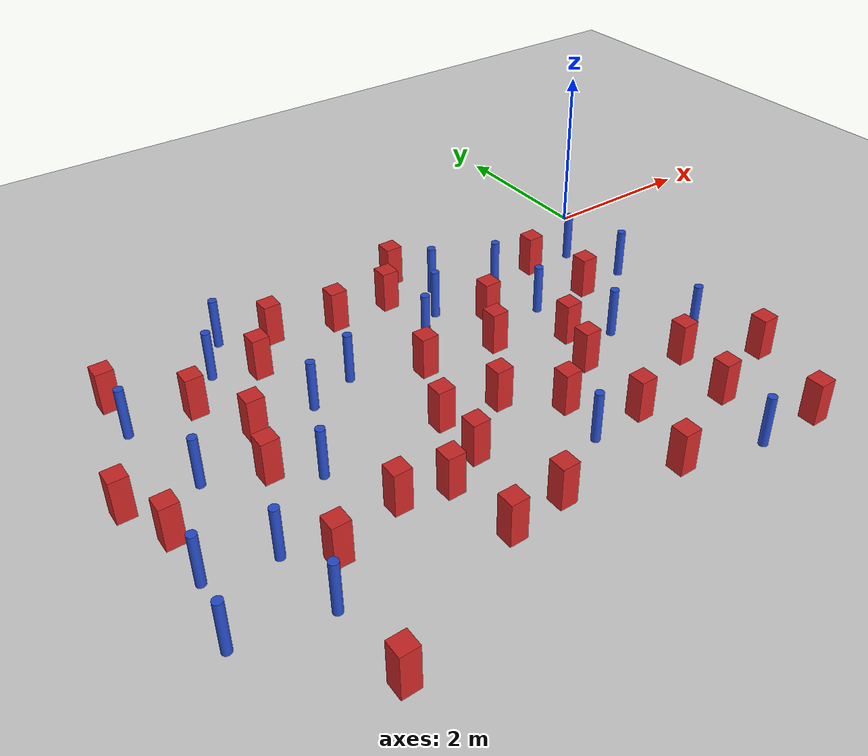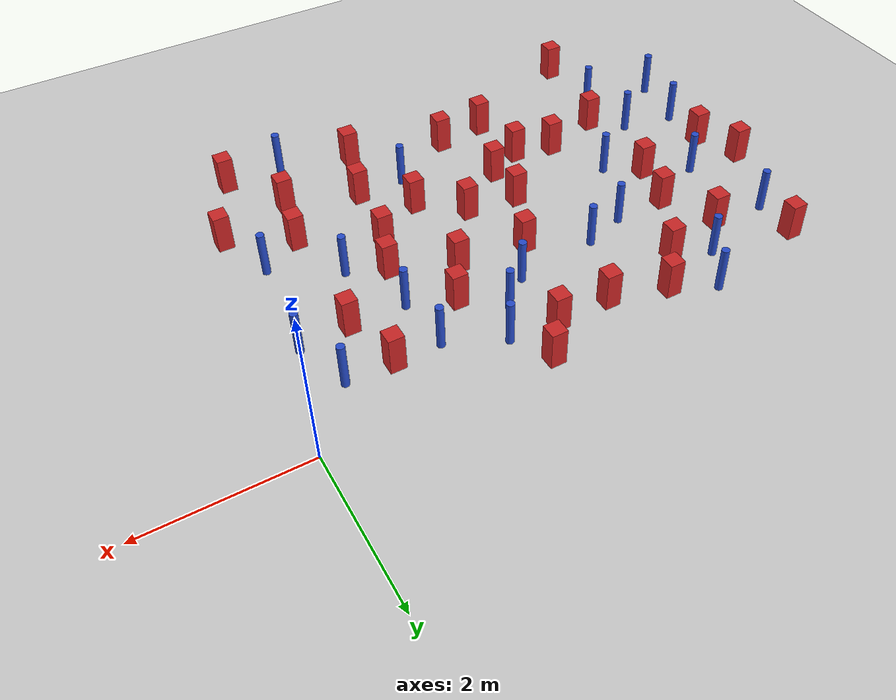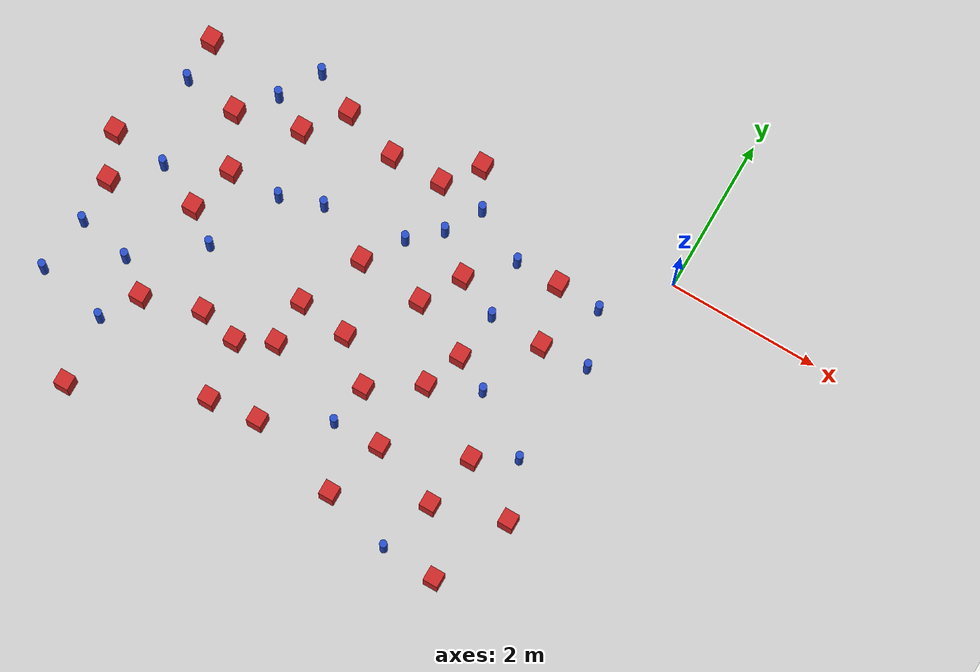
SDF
<sdf version="1.6">
 <world name="default">
  <model name="ground_plane">
   <static>1</static>
   <link name="link">
    <collision name="collision">
     <geometry><plane><normal>0 0 1</normal><size>100 100</size></plane></geometry>
     <surface><friction><ode><mu>100</mu><mu2>50</mu2></ode></friction></surface>
    </collision>
    <visual name="visual">
     <cast_shadows>0</cast_shadows>
     <geometry><plane><normal>0 0 1</normal><size>100 100</size></plane></geometry>
     <material>
      <ambient>1.0 1.0 1.0 1.0</ambient>
      <diffuse>0.8 0.8 0.8 1.0</diffuse>
      <specular>0.01 0.01 0.01 1.000000</specular>
     </material>
    </visual>
   </link>
  </model>
  <model name="pole_obstacle1">
   <static>true</static>
   <pose>-6.80756089151 -3.76116958803 7.38925637345e-09 -8.47170692798e-08 1.24976764937e-08 -1.74513093023e-07</pose>
   <link name="link">
    <pose>0 0 0.3 0 -0 0</pose>
    <inertial>
     <mass>1</mass>
     <inertia><ixx>0.145833</ixx><ixy>0</ixy><ixz>0</ixz><iyy>0.145833</iyy><iyz>0</iyz><izz>0.125</izz></inertia>
    </inertial>
    <collision name="collision">
     <geometry><cylinder><radius>0.05</radius><length>.6</length></cylinder></geometry>
    </collision>
    <visual name="visual">
     <geometry><cylinder><radius>0.05</radius><length>.6</length></cylinder></geometry>
     <material>
      <script><name>Gazebo/Blue</name><uri>file://media/materials/scripts/gazebo.material</uri></script>
     </material>
    </visual>
   </link>
  </model>
  <model name="pole_obstacle2">
   <static>true</static>
   <pose>-6.47998227093 -0.821021741895 7.38925637345e-09 -8.47170692799e-08 1.24976765038e-08 -1.74513093018e-07</pose>
   <link name="link">
    <pose>0 0 0.3 0 -0 0</pose>
    <inertial>
     <mass>1</mass>
     <inertia><ixx>0.145833</ixx><ixy>0</ixy><ixz>0</ixz><iyy>0.145833</iyy><iyz>0</iyz><izz>0.125</izz></inertia>
    </inertial>
    <collision name="collision">
     <geometry><cylinder><radius>0.05</radius><length>.6</length></cylinder></geometry>
    </collision>
    <visual name="visual">
     <geometry><cylinder><radius>0.05</radius><length>.6</length></cylinder></geometry>
     <material>
      <script><name>Gazebo/Blue</name><uri>file://media/materials/scripts/gazebo.material</uri></script>
     </material>
    </visual>
   </link>
  </model>
  <model name="pole_obstacle4">
   <static>true</static>
   <pose>-2.73762525502 -3.61398638291 7.38925637345e-09 -8.47170692798e-08 1.24976764939e-08 -1.74513093025e-07</pose>
   <link name="link">
    <pose>0 0 0.3 0 -0 0</pose>
    <inertial>
     <mass>1</mass>
     <inertia><ixx>0.145833</ixx><ixy>0</ixy><ixz>0</ixz><iyy>0.145833</iyy><iyz>0</iyz><izz>0.125</izz></inertia>
    </inertial>
    <collision name="collision">
     <geometry><cylinder><radius>0.05</radius><length>.6</length></cylinder></geometry>
    </collision>
    <visual name="visual">
     <geometry><cylinder><radius>0.05</radius><length>.6</length></cylinder></geometry>
     <material>
      <script><name>Gazebo/Blue</name><uri>file://media/materials/scripts/gazebo.material</uri></script>
     </material>
    </visual>
   </link>
  </model>
  <model name="pole_obstacle5">
   <static>true</static>
   <pose>-0.392169649328 -1.46065777088 7.38925637345e-09 -8.47170692798e-08 1.24976765025e-08 -1.74513093018e-07</pose>
   <link name="link">
    <pose>0 0 0.3 0 -0 0</pose>
    <inertial>
     <mass>1</mass>
     <inertia><ixx>0.145833</ixx><ixy>0</ixy><ixz>0</ixz><iyy>0.145833</iyy><iyz>0</iyz><izz>0.125</izz></inertia>
    </inertial>
    <collision name="collision">
     <geometry><cylinder><radius>0.05</radius><length>.6</length></cylinder></geometry>
    </collision>
    <visual name="visual">
     <geometry><cylinder><radius>0.05</radius><length>.6</length></cylinder></geometry>
     <material>
      <script><name>Gazebo/Blue</name><uri>file://media/materials/scripts/gazebo.material</uri></script>
     </material>
    </visual>
   </link>
  </model>
  <model name="square_post_obstacle9">
   <static>true</static>
   <pose>-1.21947645181 -0.743235990267 1.91545236811e-07 -7.35059704564e-06 1.12565212e-07 2.39332434364e-05</pose>
   <link name="link">
    <pose>0 0 0.25 0 -0 0</pose>
    <inertial>
     <mass>100</mass>
     <inertia>
      <ixx>0.166667</ixx>
      <ixy>0</ixy>
      <ixz>0</ixz>
      <iyy>0.166667</iyy>
      <iyz>0</iyz>
      <izz>0.166667</izz>
     </inertia>
    </inertial>
    <collision name="collision"><geometry><box><size>.2 .2 .5</size></box></geometry></collision>
    <visual name="visual">
     <geometry><box><size>.2 .2 .5</size></box></geometry>
     <material>
      <script><name>Gazebo/Red</name><uri>file://media/materials/scripts/gazebo.material</uri></script>
     </material>
    </visual>
   </link>
  </model>
  <model name="square_post_obstacle12">
   <static>true</static>
   <pose>-2.58703024874 -1.78188464464 1.91545236811e-07 -7.35059704564e-06 1.12565212e-07 2.39332434364e-05</pose>
   <link name="link">
    <pose>0 0 0.25 0 -0 0</pose>
    <inertial>
     <mass>100</mass>
     <inertia>
      <ixx>0.166667</ixx>
      <ixy>0</ixy>
      <ixz>0</ixz>
      <iyy>0.166667</iyy>
      <iyz>0</iyz>
      <izz>0.166667</izz>
     </inertia>
    </inertial>
    <collision name="collision"><geometry><box><size>.2 .2 .5</size></box></geometry></collision>
    <visual name="visual">
     <geometry><box><size>.2 .2 .5</size></box></geometry>
     <material>
      <script><name>Gazebo/Red</name><uri>file://media/materials/scripts/gazebo.material</uri></script>
     </material>
    </visual>
   </link>
  </model>
  <model name="square_post_obstacle21">
   <static>true</static>
   <pose>-1.2114949215 -3.89580348201 1.91545236811e-07 -7.35059704564e-06 1.12565212e-07 2.39332434364e-05</pose>
   <link name="link">
    <pose>0 0 0.25 0 -0 0</pose>
    <inertial>
     <mass>100</mass>
     <inertia>
      <ixx>0.166667</ixx>
      <ixy>0</ixy>
      <ixz>0</ixz>
      <iyy>0.166667</iyy>
      <iyz>0</iyz>
      <izz>0.166667</izz>
     </inertia>
    </inertial>
    <collision name="collision"><geometry><box><size>.2 .2 .5</size></box></geometry></collision>
    <visual name="visual">
     <geometry><box><size>.2 .2 .5</size></box></geometry>
     <material>
      <script><name>Gazebo/Red</name><uri>file://media/materials/scripts/gazebo.material</uri></script>
     </material>
    </visual>
   </link>
  </model>
  <model name="square_post_obstacle29">
   <static>true</static>
   <pose>-2.77101311679 0.0685009165761 1.91545236811e-07 -7.35059704564e-06 1.12565212e-07 2.39332434364e-05</pose>
   <link name="link">
    <pose>0 0 0.25 0 -0 0</pose>
    <inertial>
     <mass>100</mass>
     <inertia>
      <ixx>0.166667</ixx>
      <ixy>0</ixy>
      <ixz>0</ixz>
      <iyy>0.166667</iyy>
      <iyz>0</iyz>
      <izz>0.166667</izz>
     </inertia>
    </inertial>
    <collision name="collision"><geometry><box><size>.2 .2 .5</size></box></geometry></collision>
    <visual name="visual">
     <geometry><box><size>.2 .2 .5</size></box></geometry>
     <material>
      <script><name>Gazebo/Red</name><uri>file://media/materials/scripts/gazebo.material</uri></script>
     </material>
    </visual>
   </link>
  </model>
  <model name="pole_obstacle21">
   <static>true</static>
   <pose>-6.00327138574 -3.138117344 7.38925637345e-09 -8.47170692798e-08 1.24976764937e-08 -1.74513093023e-07</pose>
   <link name="link">
    <pose>0 0 0.3 0 -0 0</pose>
    <inertial>
     <mass>1</mass>
     <inertia><ixx>0.145833</ixx><ixy>0</ixy><ixz>0</ixz><iyy>0.145833</iyy><iyz>0</iyz><izz>0.125</izz></inertia>
    </inertial>
    <collision name="collision">
     <geometry><cylinder><radius>0.05</radius><length>.6</length></cylinder></geometry>
    </collision>
    <visual name="visual">
     <geometry><cylinder><radius>0.05</radius><length>.6</length></cylinder></geometry>
     <material>
      <script><name>Gazebo/Blue</name><uri>file://media/materials/scripts/gazebo.material</uri></script>
     </material>
    </visual>
   </link>
  </model>
  <model name="pole_obstacle22">
   <static>true</static>
   <pose>-2.76362415469 -0.871778363162 7.38925637345e-09 -8.471706928e-08 1.24976765177e-08 -1.74513093012e-07</pose>
   <link name="link">
    <pose>0 0 0.3 0 -0 0</pose>
    <inertial>
     <mass>1</mass>
     <inertia><ixx>0.145833</ixx><ixy>0</ixy><ixz>0</ixz><iyy>0.145833</iyy><iyz>0</iyz><izz>0.125</izz></inertia>
    </inertial>
    <collision name="collision">
     <geometry><cylinder><radius>0.05</radius><length>.6</length></cylinder></geometry>
    </collision>
    <visual name="visual">
     <geometry><cylinder><radius>0.05</radius><length>.6</length></cylinder></geometry>
     <material>
      <script><name>Gazebo/Blue</name><uri>file://media/materials/scripts/gazebo.material</uri></script>
     </material>
    </visual>
   </link>
  </model>
  <model name="pole_obstacle26">
   <static>true</static>
   <pose>-3.13228470041 -1.21070450907 7.38925637345e-09 -8.471706928e-08 1.24976765152e-08 -1.74513093012e-07</pose>
   <link name="link">
    <pose>0 0 0.3 0 -0 0</pose>
    <inertial>
     <mass>1</mass>
     <inertia><ixx>0.145833</ixx><ixy>0</ixy><ixz>0</ixz><iyy>0.145833</iyy><iyz>0</iyz><izz>0.125</izz></inertia>
    </inertial>
    <collision name="collision">
     <geometry><cylinder><radius>0.05</radius><length>.6</length></cylinder></geometry>
    </collision>
    <visual name="visual">
     <geometry><cylinder><radius>0.05</radius><length>.6</length></cylinder></geometry>
     <material>
      <script><name>Gazebo/Blue</name><uri>file://media/materials/scripts/gazebo.material</uri></script>
     </material>
    </visual>
   </link>
  </model>
  <model name="pole_obstacle33">
   <static>true</static>
   <pose>-6.19137565211 -1.89776098796 7.38925637345e-09 -8.471706928e-08 1.24976765134e-08 -1.74513093015e-07</pose>
   <link name="link">
    <pose>0 0 0.3 0 -0 0</pose>
    <inertial>
     <mass>1</mass>
     <inertia><ixx>0.145833</ixx><ixy>0</ixy><ixz>0</ixz><iyy>0.145833</iyy><iyz>0</iyz><izz>0.125</izz></inertia>
    </inertial>
    <collision name="collision">
     <geometry><cylinder><radius>0.05</radius><length>.6</length></cylinder></geometry>
    </collision>
    <visual name="visual">
     <geometry><cylinder><radius>0.05</radius><length>.6</length></cylinder></geometry>
     <material>
      <script><name>Gazebo/Blue</name><uri>file://media/materials/scripts/gazebo.material</uri></script>
     </material>
    </visual>
   </link>
  </model>
  <model name="pole_obstacle34">
   <static>true</static>
   <pose>-4.21428081668 -1.34430643388 7.38925637345e-09 -8.471706928e-08 1.24976765134e-08 -1.74513093015e-07</pose>
   <link name="link">
    <pose>0 0 0.3 0 -0 0</pose>
    <inertial>
     <mass>1</mass>
     <inertia><ixx>0.145833</ixx><ixy>0</ixy><ixz>0</ixz><iyy>0.145833</iyy><iyz>0</iyz><izz>0.125</izz></inertia>
    </inertial>
    <collision name="collision">
     <geometry><cylinder><radius>0.05</radius><length>.6</length></cylinder></geometry>
    </collision>
    <visual name="visual">
     <geometry><cylinder><radius>0.05</radius><length>.6</length></cylinder></geometry>
     <material>
      <script><name>Gazebo/Blue</name><uri>file://media/materials/scripts/gazebo.material</uri></script>
     </material>
    </visual>
   </link>
  </model>
  <model name="pole_obstacle44">
   <static>true</static>
   <pose>-4.75709903596 -1.53010066509 7.38925637345e-09 -8.471706928e-08 1.24976765134e-08 -1.74513093015e-07</pose>
   <link name="link">
    <pose>0 0 0.3 0 -0 0</pose>
    <inertial>
     <mass>1</mass>
     <inertia><ixx>0.145833</ixx><ixy>0</ixy><ixz>0</ixz><iyy>0.145833</iyy><iyz>0</iyz><izz>0.125</izz></inertia>
    </inertial>
    <collision name="collision">
     <geometry><cylinder><radius>0.05</radius><length>.6</length></cylinder></geometry>
    </collision>
    <visual name="visual">
     <geometry><cylinder><radius>0.05</radius><length>.6</length></cylinder></geometry>
     <material>
      <script><name>Gazebo/Blue</name><uri>file://media/materials/scripts/gazebo.material</uri></script>
     </material>
    </visual>
   </link>
  </model>
  <model name="pole_obstacle50">
   <static>true</static>
   <pose>-0.632797956223 -0.765451615622 7.38925637345e-09 -8.47170692799e-08 1.24976765008e-08 -1.7451309302e-07</pose>
   <link name="link">
    <pose>0 0 0.3 0 -0 0</pose>
    <inertial>
     <mass>1</mass>
     <inertia><ixx>0.145833</ixx><ixy>0</ixy><ixz>0</ixz><iyy>0.145833</iyy><iyz>0</iyz><izz>0.125</izz></inertia>
    </inertial>
    <collision name="collision">
     <geometry><cylinder><radius>0.05</radius><length>.6</length></cylinder></geometry>
    </collision>
    <visual name="visual">
     <geometry><cylinder><radius>0.05</radius><length>.6</length></cylinder></geometry>
     <material>
      <script><name>Gazebo/Blue</name><uri>file://media/materials/scripts/gazebo.material</uri></script>
     </material>
    </visual>
   </link>
  </model>
  <model name="square_post_obstacle49">
   <static>true</static>
   <pose>-5.43395496567 -1.5432248834 1.91545236811e-07 -7.35059704564e-06 1.12565212e-07 2.39332434364e-05</pose>
   <link name="link">
    <pose>0 0 0.25 0 -0 0</pose>
    <inertial>
     <mass>100</mass>
     <inertia>
      <ixx>0.166667</ixx>
      <ixy>0</ixy>
      <ixz>0</ixz>
      <iyy>0.166667</iyy>
      <iyz>0</iyz>
      <izz>0.166667</izz>
     </inertia>
    </inertial>
    <collision name="collision"><geometry><box><size>.2 .2 .5</size></box></geometry></collision>
    <visual name="visual">
     <geometry><box><size>.2 .2 .5</size></box></geometry>
     <material>
      <script><name>Gazebo/Red</name><uri>file://media/materials/scripts/gazebo.material</uri></script>
     </material>
    </visual>
   </link>
  </model>
  <model name="square_post_obstacle54">
   <static>true</static>
   <pose>-2.00148791491 -2.63980712276 1.91545236811e-07 -7.35059704564e-06 1.12565212e-07 2.39332434364e-05</pose>
   <link name="link">
    <pose>0 0 0.25 0 -0 0</pose>
    <inertial>
     <mass>100</mass>
     <inertia>
      <ixx>0.166667</ixx>
      <ixy>0</ixy>
      <ixz>0</ixz>
      <iyy>0.166667</iyy>
      <iyz>0</iyz>
      <izz>0.166667</izz>
     </inertia>
    </inertial>
    <collision name="collision"><geometry><box><size>.2 .2 .5</size></box></geometry></collision>
    <visual name="visual">
     <geometry><box><size>.2 .2 .5</size></box></geometry>
     <material>
      <script><name>Gazebo/Red</name><uri>file://media/materials/scripts/gazebo.material</uri></script>
     </material>
    </visual>
   </link>
  </model>
  <model name="square_post_obstacle56">
   <static>true</static>
   <pose>-1.02003137629 -1.50237422143 1.91545236811e-07 -7.35059704564e-06 1.12565212e-07 2.39332434364e-05</pose>
   <link name="link">
    <pose>0 0 0.25 0 -0 0</pose>
    <inertial>
     <mass>100</mass>
     <inertia>
      <ixx>0.166667</ixx>
      <ixy>0</ixy>
      <ixz>0</ixz>
      <iyy>0.166667</iyy>
      <iyz>0</iyz>
      <izz>0.166667</izz>
     </inertia>
    </inertial>
    <collision name="collision"><geometry><box><size>.2 .2 .5</size></box></geometry></collision>
    <visual name="visual">
     <geometry><box><size>.2 .2 .5</size></box></geometry>
     <material>
      <script><name>Gazebo/Red</name><uri>file://media/materials/scripts/gazebo.material</uri></script>
     </material>
    </visual>
   </link>
  </model>
  <model name="pole_obstacle57">
   <static>true</static>
   <pose>-1.79784456954 -0.75487063157 7.38925637345e-09 -8.47170692799e-08 1.24976765075e-08 -1.74513093017e-07</pose>
   <link name="link">
    <pose>0 0 0.3 0 -0 0</pose>
    <inertial>
     <mass>1</mass>
     <inertia><ixx>0.145833</ixx><ixy>0</ixy><ixz>0</ixz><iyy>0.145833</iyy><iyz>0</iyz><izz>0.125</izz></inertia>
    </inertial>
    <collision name="collision">
     <geometry><cylinder><radius>0.05</radius><length>.6</length></cylinder></geometry>
    </collision>
    <visual name="visual">
     <geometry><cylinder><radius>0.05</radius><length>.6</length></cylinder></geometry>
     <material>
      <script><name>Gazebo/Blue</name><uri>file://media/materials/scripts/gazebo.material</uri></script>
     </material>
    </visual>
   </link>
  </model>
  <model name="square_post_obstacle62">
   <static>true</static>
   <pose>-1.05949955092 -3.15704051231 1.91545236811e-07 -7.35059704564e-06 1.12565212e-07 2.39332434364e-05</pose>
   <link name="link">
    <pose>0 0 0.25 0 -0 0</pose>
    <inertial>
     <mass>100</mass>
     <inertia>
      <ixx>0.166667</ixx>
      <ixy>0</ixy>
      <ixz>0</ixz>
      <iyy>0.166667</iyy>
      <iyz>0</iyz>
      <izz>0.166667</izz>
     </inertia>
    </inertial>
    <collision name="collision"><geometry><box><size>.2 .2 .5</size></box></geometry></collision>
    <visual name="visual">
     <geometry><box><size>.2 .2 .5</size></box></geometry>
     <material>
      <script><name>Gazebo/Red</name><uri>file://media/materials/scripts/gazebo.material</uri></script>
     </material>
    </visual>
   </link>
  </model>
  <model name="square_post_obstacle65">
   <static>true</static>
   <pose>-2.34261777481 -4.39310534332 1.91545236811e-07 -7.35059704564e-06 1.12565212e-07 2.39332434364e-05</pose>
   <link name="link">
    <pose>0 0 0.25 0 -0 0</pose>
    <inertial>
     <mass>100</mass>
     <inertia>
      <ixx>0.166667</ixx>
      <ixy>0</ixy>
      <ixz>0</ixz>
      <iyy>0.166667</iyy>
      <iyz>0</iyz>
      <izz>0.166667</izz>
     </inertia>
    </inertial>
    <collision name="collision"><geometry><box><size>.2 .2 .5</size></box></geometry></collision>
    <visual name="visual">
     <geometry><box><size>.2 .2 .5</size></box></geometry>
     <material>
      <script><name>Gazebo/Red</name><uri>file://media/materials/scripts/gazebo.material</uri></script>
     </material>
    </visual>
   </link>
  </model>
  <model name="pole_obstacle67">
   <static>true</static>
   <pose>-5.18529280276 -2.48081603212 7.38925637345e-09 -8.47170692798e-08 1.24976764937e-08 -1.74513093023e-07</pose>
   <link name="link">
    <pose>0 0 0.3 0 -0 0</pose>
    <inertial>
     <mass>1</mass>
     <inertia><ixx>0.145833</ixx><ixy>0</ixy><ixz>0</ixz><iyy>0.145833</iyy><iyz>0</iyz><izz>0.125</izz></inertia>
    </inertial>
    <collision name="collision">
     <geometry><cylinder><radius>0.05</radius><length>.6</length></cylinder></geometry>
    </collision>
    <visual name="visual">
     <geometry><cylinder><radius>0.05</radius><length>.6</length></cylinder></geometry>
     <material>
      <script><name>Gazebo/Blue</name><uri>file://media/materials/scripts/gazebo.material</uri></script>
     </material>
    </visual>
   </link>
  </model>
  <model name="pole_obstacle95">
   <static>true</static>
   <pose>-5.07993399945 0.080660043997 7.38925637345e-09 -8.47170692799e-08 1.24976765066e-08 -1.74513093016e-07</pose>
   <link name="link">
    <pose>0 0 0.3 0 -0 0</pose>
    <inertial>
     <mass>1</mass>
     <inertia><ixx>0.145833</ixx><ixy>0</ixy><ixz>0</ixz><iyy>0.145833</iyy><iyz>0</iyz><izz>0.125</izz></inertia>
    </inertial>
    <collision name="collision">
     <geometry><cylinder><radius>0.05</radius><length>.6</length></cylinder></geometry>
    </collision>
    <visual name="visual">
     <geometry><cylinder><radius>0.05</radius><length>.6</length></cylinder></geometry>
     <material>
      <script><name>Gazebo/Blue</name><uri>file://media/materials/scripts/gazebo.material</uri></script>
     </material>
    </visual>
   </link>
  </model>
  <model name="square_post_obstacle94">
   <static>true</static>
   <pose>-4.9324892115 -0.667491602561 1.91545236811e-07 -7.35059704564e-06 1.12565212e-07 2.39332434364e-05</pose>
   <link name="link">
    <pose>0 0 0.25 0 -0 0</pose>
    <inertial>
     <mass>100</mass>
     <inertia>
      <ixx>0.166667</ixx>
      <ixy>0</ixy>
      <ixz>0</ixz>
      <iyy>0.166667</iyy>
      <iyz>0</iyz>
      <izz>0.166667</izz>
     </inertia>
    </inertial>
    <collision name="collision"><geometry><box><size>.2 .2 .5</size></box></geometry></collision>
    <visual name="visual">
     <geometry><box><size>.2 .2 .5</size></box></geometry>
     <material>
      <script><name>Gazebo/Red</name><uri>file://media/materials/scripts/gazebo.material</uri></script>
     </material>
    </visual>
   </link>
  </model>
  <model name="square_post_obstacle95">
   <static>true</static>
   <pose>-3.80680491629 -0.377705306562 1.91545236811e-07 -7.35059704564e-06 1.12565212e-07 2.39332434364e-05</pose>
   <link name="link">
    <pose>0 0 0.25 0 -0 0</pose>
    <inertial>
     <mass>100</mass>
     <inertia>
      <ixx>0.166667</ixx>
      <ixy>0</ixy>
      <ixz>0</ixz>
      <iyy>0.166667</iyy>
      <iyz>0</iyz>
      <izz>0.166667</izz>
     </inertia>
    </inertial>
    <collision name="collision"><geometry><box><size>.2 .2 .5</size></box></geometry></collision>
    <visual name="visual">
     <geometry><box><size>.2 .2 .5</size></box></geometry>
     <material>
      <script><name>Gazebo/Red</name><uri>file://media/materials/scripts/gazebo.material</uri></script>
     </material>
    </visual>
   </link>
  </model>
  <model name="pole_obstacle110">
   <static>true</static>
   <pose>-5.39634524636 -0.438193054145 7.38925637345e-09 -8.47170692798e-08 1.24976765003e-08 -1.7451309302e-07</pose>
   <link name="link">
    <pose>0 0 0.3 0 -0 0</pose>
    <inertial>
     <mass>1</mass>
     <inertia><ixx>0.145833</ixx><ixy>0</ixy><ixz>0</ixz><iyy>0.145833</iyy><iyz>0</iyz><izz>0.125</izz></inertia>
    </inertial>
    <collision name="collision">
     <geometry><cylinder><radius>0.05</radius><length>.6</length></cylinder></geometry>
    </collision>
    <visual name="visual">
     <geometry><cylinder><radius>0.05</radius><length>.6</length></cylinder></geometry>
     <material>
      <script><name>Gazebo/Blue</name><uri>file://media/materials/scripts/gazebo.material</uri></script>
     </material>
    </visual>
   </link>
  </model>
  <model name="pole_obstacle119">
   <static>true</static>
   <pose>-6.68662095089 -3.00748863569 7.38925637345e-09 -8.47170692798e-08 1.24976764937e-08 -1.74513093023e-07</pose>
   <link name="link">
    <pose>0 0 0.3 0 -0 0</pose>
    <inertial>
     <mass>1</mass>
     <inertia><ixx>0.145833</ixx><ixy>0</ixy><ixz>0</ixz><iyy>0.145833</iyy><iyz>0</iyz><izz>0.125</izz></inertia>
    </inertial>
    <collision name="collision">
     <geometry><cylinder><radius>0.05</radius><length>.6</length></cylinder></geometry>
    </collision>
    <visual name="visual">
     <geometry><cylinder><radius>0.05</radius><length>.6</length></cylinder></geometry>
     <material>
      <script><name>Gazebo/Blue</name><uri>file://media/materials/scripts/gazebo.material</uri></script>
     </material>
    </visual>
   </link>
  </model>
  <model name="square_post_obstacle121">
   <static>true</static>
   <pose>-4.53830205065 -0.17434239099 1.91545236811e-07 -7.35059704564e-06 1.12565212e-07 2.39332434364e-05</pose>
   <link name="link">
    <pose>0 0 0.25 0 -0 0</pose>
    <inertial>
     <mass>100</mass>
     <inertia>
      <ixx>0.166667</ixx>
      <ixy>0</ixy>
      <ixz>0</ixz>
      <iyy>0.166667</iyy>
      <iyz>0</iyz>
      <izz>0.166667</izz>
     </inertia>
    </inertial>
    <collision name="collision"><geometry><box><size>.2 .2 .5</size></box></geometry></collision>
    <visual name="visual">
     <geometry><box><size>.2 .2 .5</size></box></geometry>
     <material>
      <script><name>Gazebo/Red</name><uri>file://media/materials/scripts/gazebo.material</uri></script>
     </material>
    </visual>
   </link>
  </model>
  <model name="square_post_obstacle125">
   <static>true</static>
   <pose>-3.84096896175 -2.524287209 1.91545236811e-07 -7.35059704564e-06 1.12565212e-07 2.39332434364e-05</pose>
   <link name="link">
    <pose>0 0 0.25 0 -0 0</pose>
    <inertial>
     <mass>100</mass>
     <inertia>
      <ixx>0.166667</ixx>
      <ixy>0</ixy>
      <ixz>0</ixz>
      <iyy>0.166667</iyy>
      <iyz>0</iyz>
      <izz>0.166667</izz>
     </inertia>
    </inertial>
    <collision name="collision"><geometry><box><size>.2 .2 .5</size></box></geometry></collision>
    <visual name="visual">
     <geometry><box><size>.2 .2 .5</size></box></geometry>
     <material>
      <script><name>Gazebo/Red</name><uri>file://media/materials/scripts/gazebo.material</uri></script>
     </material>
    </visual>
   </link>
  </model>
  <model name="square_post_obstacle130">
   <static>true</static>
   <pose>-0.278341029281 -3.59370910486 1.91545236811e-07 -7.35059704564e-06 1.12565212e-07 2.39332434364e-05</pose>
   <link name="link">
    <pose>0 0 0.25 0 -0 0</pose>
    <inertial>
     <mass>100</mass>
     <inertia>
      <ixx>0.166667</ixx>
      <ixy>0</ixy>
      <ixz>0</ixz>
      <iyy>0.166667</iyy>
      <iyz>0</iyz>
      <izz>0.166667</izz>
     </inertia>
    </inertial>
    <collision name="collision"><geometry><box><size>.2 .2 .5</size></box></geometry></collision>
    <visual name="visual">
     <geometry><box><size>.2 .2 .5</size></box></geometry>
     <material>
      <script><name>Gazebo/Red</name><uri>file://media/materials/scripts/gazebo.material</uri></script>
     </material>
    </visual>
   </link>
  </model>
  <model name="square_post_obstacle133">
   <static>true</static>
   <pose>-0.707212788863 -4.66557510735 1.91545236811e-07 -7.35059704564e-06 1.12565212e-07 2.39332434364e-05</pose>
   <link name="link">
    <pose>0 0 0.25 0 -0 0</pose>
    <inertial>
     <mass>100</mass>
     <inertia>
      <ixx>0.166667</ixx>
      <ixy>0</ixy>
      <ixz>0</ixz>
      <iyy>0.166667</iyy>
      <iyz>0</iyz>
      <izz>0.166667</izz>
     </inertia>
    </inertial>
    <collision name="collision"><geometry><box><size>.2 .2 .5</size></box></geometry></collision>
    <visual name="visual">
     <geometry><box><size>.2 .2 .5</size></box></geometry>
     <material>
      <script><name>Gazebo/Red</name><uri>file://media/materials/scripts/gazebo.material</uri></script>
     </material>
    </visual>
   </link>
  </model>
  <model name="square_post_obstacle137">
   <static>true</static>
   <pose>-5.77492188356 -0.874805363042 1.91545236811e-07 -7.35059704564e-06 1.12565212e-07 2.39332434364e-05</pose>
   <link name="link">
    <pose>0 0 0.25 0 -0 0</pose>
    <inertial>
     <mass>100</mass>
     <inertia>
      <ixx>0.166667</ixx>
      <ixy>0</ixy>
      <ixz>0</ixz>
      <iyy>0.166667</iyy>
      <iyz>0</iyz>
      <izz>0.166667</izz>
     </inertia>
    </inertial>
    <collision name="collision"><geometry><box><size>.2 .2 .5</size></box></geometry></collision>
    <visual name="visual">
     <geometry><box><size>.2 .2 .5</size></box></geometry>
     <material>
      <script><name>Gazebo/Red</name><uri>file://media/materials/scripts/gazebo.material</uri></script>
     </material>
    </visual>
   </link>
  </model>
  <model name="square_post_obstacle138">
   <static>true</static>
   <pose>-5.59763435227 -3.45737967633 1.91545236811e-07 -7.35059704564e-06 1.12565212e-07 2.39332434364e-05</pose>
   <link name="link">
    <pose>0 0 0.25 0 -0 0</pose>
    <inertial>
     <mass>100</mass>
     <inertia>
      <ixx>0.166667</ixx>
      <ixy>0</ixy>
      <ixz>0</ixz>
      <iyy>0.166667</iyy>
      <iyz>0</iyz>
      <izz>0.166667</izz>
     </inertia>
    </inertial>
    <collision name="collision"><geometry><box><size>.2 .2 .5</size></box></geometry></collision>
    <visual name="visual">
     <geometry><box><size>.2 .2 .5</size></box></geometry>
     <material>
      <script><name>Gazebo/Red</name><uri>file://media/materials/scripts/gazebo.material</uri></script>
     </material>
    </visual>
   </link>
  </model>
  <model name="pole_obstacle151">
   <static>true</static>
   <pose>-5.89630520745 -3.94172002987 7.38925637345e-09 -8.47170692798e-08 1.24976764937e-08 -1.74513093023e-07</pose>
   <link name="link">
    <pose>0 0 0.3 0 -0 0</pose>
    <inertial>
     <mass>1</mass>
     <inertia><ixx>0.145833</ixx><ixy>0</ixy><ixz>0</ixz><iyy>0.145833</iyy><iyz>0</iyz><izz>0.125</izz></inertia>
    </inertial>
    <collision name="collision">
     <geometry><cylinder><radius>0.05</radius><length>.6</length></cylinder></geometry>
    </collision>
    <visual name="visual">
     <geometry><cylinder><radius>0.05</radius><length>.6</length></cylinder></geometry>
     <material>
      <script><name>Gazebo/Blue</name><uri>file://media/materials/scripts/gazebo.material</uri></script>
     </material>
    </visual>
   </link>
  </model>
  <model name="square_post_obstacle144">
   <static>true</static>
   <pose>-2.64665051672 -3.05875464296 1.91545236811e-07 -7.35059704564e-06 1.12565212e-07 2.39332434364e-05</pose>
   <link name="link">
    <pose>0 0 0.25 0 -0 0</pose>
    <inertial>
     <mass>100</mass>
     <inertia>
      <ixx>0.166667</ixx>
      <ixy>0</ixy>
      <ixz>0</ixz>
      <iyy>0.166667</iyy>
      <iyz>0</iyz>
      <izz>0.166667</izz>
     </inertia>
    </inertial>
    <collision name="collision"><geometry><box><size>.2 .2 .5</size></box></geometry></collision>
    <visual name="visual">
     <geometry><box><size>.2 .2 .5</size></box></geometry>
     <material>
      <script><name>Gazebo/Red</name><uri>file://media/materials/scripts/gazebo.material</uri></script>
     </material>
    </visual>
   </link>
  </model>
  <model name="square_post_obstacle145">
   <static>true</static>
   <pose>-1.81582699371 -2.12551324279 1.91545236811e-07 -7.35059704564e-06 1.12565212e-07 2.39332434364e-05</pose>
   <link name="link">
    <pose>0 0 0.25 0 -0 0</pose>
    <inertial>
     <mass>100</mass>
     <inertia>
      <ixx>0.166667</ixx>
      <ixy>0</ixy>
      <ixz>0</ixz>
      <iyy>0.166667</iyy>
      <iyz>0</iyz>
      <izz>0.166667</izz>
     </inertia>
    </inertial>
    <collision name="collision"><geometry><box><size>.2 .2 .5</size></box></geometry></collision>
    <visual name="visual">
     <geometry><box><size>.2 .2 .5</size></box></geometry>
     <material>
      <script><name>Gazebo/Red</name><uri>file://media/materials/scripts/gazebo.material</uri></script>
     </material>
    </visual>
   </link>
  </model>
  <model name="pole_obstacle159">
   <static>true</static>
   <pose>-2.49470531 -0.415724774862 7.38925637345e-09 -8.471706928e-08 1.24976765172e-08 -1.74513093013e-07</pose>
   <link name="link">
    <pose>0 0 0.3 0 -0 0</pose>
    <inertial>
     <mass>1</mass>
     <inertia><ixx>0.145833</ixx><ixy>0</ixy><ixz>0</ixz><iyy>0.145833</iyy><iyz>0</iyz><izz>0.125</izz></inertia>
    </inertial>
    <collision name="collision">
     <geometry><cylinder><radius>0.05</radius><length>.6</length></cylinder></geometry>
    </collision>
    <visual name="visual">
     <geometry><cylinder><radius>0.05</radius><length>.6</length></cylinder></geometry>
     <material>
      <script><name>Gazebo/Blue</name><uri>file://media/materials/scripts/gazebo.material</uri></script>
     </material>
    </visual>
   </link>
  </model>
  <model name="square_post_obstacle153">
   <static>true</static>
   <pose>-4.21385485635 -4.13421109252 1.91545236811e-07 -7.35059704564e-06 1.12565212e-07 2.39332434364e-05</pose>
   <link name="link">
    <pose>0 0 0.25 0 -0 0</pose>
    <inertial>
     <mass>100</mass>
     <inertia>
      <ixx>0.166667</ixx>
      <ixy>0</ixy>
      <ixz>0</ixz>
      <iyy>0.166667</iyy>
      <iyz>0</iyz>
      <izz>0.166667</izz>
     </inertia>
    </inertial>
    <collision name="collision"><geometry><box><size>.2 .2 .5</size></box></geometry></collision>
    <visual name="visual">
     <geometry><box><size>.2 .2 .5</size></box></geometry>
     <material>
      <script><name>Gazebo/Red</name><uri>file://media/materials/scripts/gazebo.material</uri></script>
     </material>
    </visual>
   </link>
  </model>
  <model name="square_post_obstacle154">
   <static>true</static>
   <pose>-6.91828912066 -1.83581820331 1.91545236811e-07 -7.35059704564e-06 1.12565212e-07 2.39332434364e-05</pose>
   <link name="link">
    <pose>0 0 0.25 0 -0 0</pose>
    <inertial>
     <mass>100</mass>
     <inertia>
      <ixx>0.166667</ixx>
      <ixy>0</ixy>
      <ixz>0</ixz>
      <iyy>0.166667</iyy>
      <iyz>0</iyz>
      <izz>0.166667</izz>
     </inertia>
    </inertial>
    <collision name="collision"><geometry><box><size>.2 .2 .5</size></box></geometry></collision>
    <visual name="visual">
     <geometry><box><size>.2 .2 .5</size></box></geometry>
     <material>
      <script><name>Gazebo/Red</name><uri>file://media/materials/scripts/gazebo.material</uri></script>
     </material>
    </visual>
   </link>
  </model>
  <model name="square_post_obstacle156">
   <static>true</static>
   <pose>-6.68447265408 -2.40276820058 1.91545236811e-07 -7.35059704564e-06 1.12565212e-07 2.39332434364e-05</pose>
   <link name="link">
    <pose>0 0 0.25 0 -0 0</pose>
    <inertial>
     <mass>100</mass>
     <inertia>
      <ixx>0.166667</ixx>
      <ixy>0</ixy>
      <ixz>0</ixz>
      <iyy>0.166667</iyy>
      <iyz>0</iyz>
      <izz>0.166667</izz>
     </inertia>
    </inertial>
    <collision name="collision"><geometry><box><size>.2 .2 .5</size></box></geometry></collision>
    <visual name="visual">
     <geometry><box><size>.2 .2 .5</size></box></geometry>
     <material>
      <script><name>Gazebo/Red</name><uri>file://media/materials/scripts/gazebo.material</uri></script>
     </material>
    </visual>
   </link>
  </model>
  <model name="square_post_obstacle159">
   <static>true</static>
   <pose>-2.11001612542 -3.58472312628 1.91545236811e-07 -7.35059704564e-06 1.12565212e-07 2.39332434364e-05</pose>
   <link name="link">
    <pose>0 0 0.25 0 -0 0</pose>
    <inertial>
     <mass>100</mass>
     <inertia>
      <ixx>0.166667</ixx>
      <ixy>0</ixy>
      <ixz>0</ixz>
      <iyy>0.166667</iyy>
      <iyz>0</iyz>
      <izz>0.166667</izz>
     </inertia>
    </inertial>
    <collision name="collision"><geometry><box><size>.2 .2 .5</size></box></geometry></collision>
    <visual name="visual">
     <geometry><box><size>.2 .2 .5</size></box></geometry>
     <material>
      <script><name>Gazebo/Red</name><uri>file://media/materials/scripts/gazebo.material</uri></script>
     </material>
    </visual>
   </link>
  </model>
  <model name="square_post_obstacle166">
   <static>true</static>
   <pose>-3.85686372159 -3.11557948898 1.91545236811e-07 -7.35059704564e-06 1.12565212e-07 2.39332434364e-05</pose>
   <link name="link">
    <pose>0 0 0.25 0 -0 0</pose>
    <inertial>
     <mass>100</mass>
     <inertia>
      <ixx>0.166667</ixx>
      <ixy>0</ixy>
      <ixz>0</ixz>
      <iyy>0.166667</iyy>
      <iyz>0</iyz>
      <izz>0.166667</izz>
     </inertia>
    </inertial>
    <collision name="collision"><geometry><box><size>.2 .2 .5</size></box></geometry></collision>
    <visual name="visual">
     <geometry><box><size>.2 .2 .5</size></box></geometry>
     <material>
      <script><name>Gazebo/Red</name><uri>file://media/materials/scripts/gazebo.material</uri></script>
     </material>
    </visual>
   </link>
  </model>
  <model name="square_post_obstacle168">
   <static>true</static>
   <pose>-2.28135987478 -1.25261989087 1.91545236811e-07 -7.35059704564e-06 1.12565212e-07 2.39332434364e-05</pose>
   <link name="link">
    <pose>0 0 0.25 0 -0 0</pose>
    <inertial>
     <mass>100</mass>
     <inertia>
      <ixx>0.166667</ixx>
      <ixy>0</ixy>
      <ixz>0</ixz>
      <iyy>0.166667</iyy>
      <iyz>0</iyz>
      <izz>0.166667</izz>
     </inertia>
    </inertial>
    <collision name="collision"><geometry><box><size>.2 .2 .5</size></box></geometry></collision>
    <visual name="visual">
     <geometry><box><size>.2 .2 .5</size></box></geometry>
     <material>
      <script><name>Gazebo/Red</name><uri>file://media/materials/scripts/gazebo.material</uri></script>
     </material>
    </visual>
   </link>
  </model>
  <model name="square_post_obstacle170">
   <static>true</static>
   <pose>-5.60053800929 -2.17307786007 1.91545236811e-07 -7.35059704564e-06 1.12565212e-07 2.39332434364e-05</pose>
   <link name="link">
    <pose>0 0 0.25 0 -0 0</pose>
    <inertial>
     <mass>100</mass>
     <inertia>
      <ixx>0.166667</ixx>
      <ixy>0</ixy>
      <ixz>0</ixz>
      <iyy>0.166667</iyy>
      <iyz>0</iyz>
      <izz>0.166667</izz>
     </inertia>
    </inertial>
    <collision name="collision"><geometry><box><size>.2 .2 .5</size></box></geometry></collision>
    <visual name="visual">
     <geometry><box><size>.2 .2 .5</size></box></geometry>
     <material>
      <script><name>Gazebo/Red</name><uri>file://media/materials/scripts/gazebo.material</uri></script>
     </material>
    </visual>
   </link>
  </model>
  <model name="pole_obstacle182">
   <static>true</static>
   <pose>-0.547631122734 -2.86343762734 7.38925637345e-09 -8.47170692799e-08 1.24976765084e-08 -1.74513093016e-07</pose>
   <link name="link">
    <pose>0 0 0.3 0 -0 0</pose>
    <inertial>
     <mass>1</mass>
     <inertia><ixx>0.145833</ixx><ixy>0</ixy><ixz>0</ixz><iyy>0.145833</iyy><iyz>0</iyz><izz>0.125</izz></inertia>
    </inertial>
    <collision name="collision">
     <geometry><cylinder><radius>0.05</radius><length>.6</length></cylinder></geometry>
    </collision>
    <visual name="visual">
     <geometry><cylinder><radius>0.05</radius><length>.6</length></cylinder></geometry>
     <material>
      <script><name>Gazebo/Blue</name><uri>file://media/materials/scripts/gazebo.material</uri></script>
     </material>
    </visual>
   </link>
  </model>
  <model name="pole_obstacle183">
   <static>true</static>
   <pose>-1.43611412173 -4.63899287809 7.38925637345e-09 -8.47170692799e-08 1.24976765033e-08 -1.74513093018e-07</pose>
   <link name="link">
    <pose>0 0 0.3 0 -0 0</pose>
    <inertial>
     <mass>1</mass>
     <inertia><ixx>0.145833</ixx><ixy>0</ixy><ixz>0</ixz><iyy>0.145833</iyy><iyz>0</iyz><izz>0.125</izz></inertia>
    </inertial>
    <collision name="collision">
     <geometry><cylinder><radius>0.05</radius><length>.6</length></cylinder></geometry>
    </collision>
    <visual name="visual">
     <geometry><cylinder><radius>0.05</radius><length>.6</length></cylinder></geometry>
     <material>
      <script><name>Gazebo/Blue</name><uri>file://media/materials/scripts/gazebo.material</uri></script>
     </material>
    </visual>
   </link>
  </model>
  <model name="square_post_obstacle179">
   <static>true</static>
   <pose>-5.83900137147 -4.85096032025 1.91545236811e-07 -7.35059704564e-06 1.12565212e-07 2.39332434364e-05</pose>
   <link name="link">
    <pose>0 0 0.25 0 -0 0</pose>
    <inertial>
     <mass>100</mass>
     <inertia>
      <ixx>0.166667</ixx>
      <ixy>0</ixy>
      <ixz>0</ixz>
      <iyy>0.166667</iyy>
      <iyz>0</iyz>
      <izz>0.166667</izz>
     </inertia>
    </inertial>
    <collision name="collision"><geometry><box><size>.2 .2 .5</size></box></geometry></collision>
    <visual name="visual">
     <geometry><box><size>.2 .2 .5</size></box></geometry>
     <material>
      <script><name>Gazebo/Red</name><uri>file://media/materials/scripts/gazebo.material</uri></script>
     </material>
    </visual>
   </link>
  </model>
  <model name="square_post_obstacle180">
   <static>true</static>
   <pose>-3.46779653489 -1.69812355537 1.91545236811e-07 -7.35059704564e-06 1.12565212e-07 2.39332434364e-05</pose>
   <link name="link">
    <pose>0 0 0.25 0 -0 0</pose>
    <inertial>
     <mass>100</mass>
     <inertia>
      <ixx>0.166667</ixx>
      <ixy>0</ixy>
      <ixz>0</ixz>
      <iyy>0.166667</iyy>
      <iyz>0</iyz>
      <izz>0.166667</izz>
     </inertia>
    </inertial>
    <collision name="collision"><geometry><box><size>.2 .2 .5</size></box></geometry></collision>
    <visual name="visual">
     <geometry><box><size>.2 .2 .5</size></box></geometry>
     <material>
      <script><name>Gazebo/Red</name><uri>file://media/materials/scripts/gazebo.material</uri></script>
     </material>
    </visual>
   </link>
  </model>
  <model name="square_post_obstacle197">
   <static>true</static>
   <pose>-4.31660197081 -3.34777008825 1.91545236811e-07 -7.35059704564e-06 1.12565212e-07 2.39332434364e-05</pose>
   <link name="link">
    <pose>0 0 0.25 0 -0 0</pose>
    <inertial>
     <mass>100</mass>
     <inertia>
      <ixx>0.166667</ixx>
      <ixy>0</ixy>
      <ixz>0</ixz>
      <iyy>0.166667</iyy>
      <iyz>0</iyz>
      <izz>0.166667</izz>
     </inertia>
    </inertial>
    <collision name="collision"><geometry><box><size>.2 .2 .5</size></box></geometry></collision>
    <visual name="visual">
     <geometry><box><size>.2 .2 .5</size></box></geometry>
     <material>
      <script><name>Gazebo/Red</name><uri>file://media/materials/scripts/gazebo.material</uri></script>
     </material>
    </visual>
   </link>
  </model>
  <model name="pole_obstacle204">
   <static>true</static>
   <pose>-1.35562665394 -2.36189434941 7.38925637345e-09 -8.47170692799e-08 1.24976765053e-08 -1.74513093017e-07</pose>
   <link name="link">
    <pose>0 0 0.3 0 -0 0</pose>
    <inertial>
     <mass>1</mass>
     <inertia><ixx>0.145833</ixx><ixy>0</ixy><ixz>0</ixz><iyy>0.145833</iyy><iyz>0</iyz><izz>0.125</izz></inertia>
    </inertial>
    <collision name="collision">
     <geometry><cylinder><radius>0.05</radius><length>.6</length></cylinder></geometry>
    </collision>
    <visual name="visual">
     <geometry><cylinder><radius>0.05</radius><length>.6</length></cylinder></geometry>
     <material>
      <script><name>Gazebo/Blue</name><uri>file://media/materials/scripts/gazebo.material</uri></script>
     </material>
    </visual>
   </link>
  </model>
  <model name="square_post_obstacle199">
   <static>true</static>
   <pose>-6.46783561446 -0.254076757035 1.91545236811e-07 -7.35059704564e-06 1.12565212e-07 2.39332434364e-05</pose>
   <link name="link">
    <pose>0 0 0.25 0 -0 0</pose>
    <inertial>
     <mass>100</mass>
     <inertia>
      <ixx>0.166667</ixx>
      <ixy>0</ixy>
      <ixz>0</ixz>
      <iyy>0.166667</iyy>
      <iyz>0</iyz>
      <izz>0.166667</izz>
     </inertia>
    </inertial>
    <collision name="collision"><geometry><box><size>.2 .2 .5</size></box></geometry></collision>
    <visual name="visual">
     <geometry><box><size>.2 .2 .5</size></box></geometry>
     <material>
      <script><name>Gazebo/Red</name><uri>file://media/materials/scripts/gazebo.material</uri></script>
     </material>
    </visual>
   </link>
  </model>
  <model name="square_post_obstacle200">
   <static>true</static>
   <pose>-3.56403249736 -4.06084377706 1.91545236811e-07 -7.35059704564e-06 1.12565212e-07 2.39332434364e-05</pose>
   <link name="link">
    <pose>0 0 0.25 0 -0 0</pose>
    <inertial>
     <mass>100</mass>
     <inertia>
      <ixx>0.166667</ixx>
      <ixy>0</ixy>
      <ixz>0</ixz>
      <iyy>0.166667</iyy>
      <iyz>0</iyz>
      <izz>0.166667</izz>
     </inertia>
    </inertial>
    <collision name="collision"><geometry><box><size>.2 .2 .5</size></box></geometry></collision>
    <visual name="visual">
     <geometry><box><size>.2 .2 .5</size></box></geometry>
     <material>
      <script><name>Gazebo/Red</name><uri>file://media/materials/scripts/gazebo.material</uri></script>
     </material>
    </visual>
   </link>
  </model>
  <model name="square_post_obstacle204">
   <static>true</static>
   <pose>-4.83167446035 -3.23356033291 1.91545236811e-07 -7.35059704564e-06 1.12565212e-07 2.39332434364e-05</pose>
   <link name="link">
    <pose>0 0 0.25 0 -0 0</pose>
    <inertial>
     <mass>100</mass>
     <inertia>
      <ixx>0.166667</ixx>
      <ixy>0</ixy>
      <ixz>0</ixz>
      <iyy>0.166667</iyy>
      <iyz>0</iyz>
      <izz>0.166667</izz>
     </inertia>
    </inertial>
    <collision name="collision"><geometry><box><size>.2 .2 .5</size></box></geometry></collision>
    <visual name="visual">
     <geometry><box><size>.2 .2 .5</size></box></geometry>
     <material>
      <script><name>Gazebo/Red</name><uri>file://media/materials/scripts/gazebo.material</uri></script>
     </material>
    </visual>
   </link>
  </model>
  <model name="square_post_obstacle207">
   <static>true</static>
   <pose>-3.17155270085 -2.60406001703 1.91545236811e-07 -7.35059704564e-06 1.12565212e-07 2.39332434364e-05</pose>
   <link name="link">
    <pose>0 0 0.25 0 -0 0</pose>
    <inertial>
     <mass>100</mass>
     <inertia>
      <ixx>0.166667</ixx>
      <ixy>0</ixy>
      <ixz>0</ixz>
      <iyy>0.166667</iyy>
      <iyz>0</iyz>
      <izz>0.166667</izz>
     </inertia>
    </inertial>
    <collision name="collision"><geometry><box><size>.2 .2 .5</size></box></geometry></collision>
    <visual name="visual">
     <geometry><box><size>.2 .2 .5</size></box></geometry>
     <material>
      <script><name>Gazebo/Red</name><uri>file://media/materials/scripts/gazebo.material</uri></script>
     </material>
    </visual>
   </link>
  </model>
  <model name="square_post_obstacle216">
   <static>true</static>
   <pose>-3.10877578461 -0.364405376731 1.91545236811e-07 -7.35059704564e-06 1.12565212e-07 2.39332434364e-05</pose>
   <link name="link">
    <pose>0 0 0.25 0 -0 0</pose>
    <inertial>
     <mass>100</mass>
     <inertia>
      <ixx>0.166667</ixx>
      <ixy>0</ixy>
      <ixz>0</ixz>
      <iyy>0.166667</iyy>
      <iyz>0</iyz>
      <izz>0.166667</izz>
     </inertia>
    </inertial>
    <collision name="collision"><geometry><box><size>.2 .2 .5</size></box></geometry></collision>
    <visual name="visual">
     <geometry><box><size>.2 .2 .5</size></box></geometry>
     <material>
      <script><name>Gazebo/Red</name><uri>file://media/materials/scripts/gazebo.material</uri></script>
     </material>
    </visual>
   </link>
  </model>
  <model name="pole_obstacle219">
   <static>true</static>
   <pose>-1.73057738947 -1.49515861626 7.38925637345e-09 -8.471706928e-08 1.24976765079e-08 -1.74513093017e-07</pose>
   <link name="link">
    <pose>0 0 0.3 0 -0 0</pose>
    <inertial>
     <mass>1</mass>
     <inertia><ixx>0.145833</ixx><ixy>0</ixy><ixz>0</ixz><iyy>0.145833</iyy><iyz>0</iyz><izz>0.125</izz></inertia>
    </inertial>
    <collision name="collision">
     <geometry><cylinder><radius>0.05</radius><length>.6</length></cylinder></geometry>
    </collision>
    <visual name="visual">
     <geometry><cylinder><radius>0.05</radius><length>.6</length></cylinder></geometry>
     <material>
      <script><name>Gazebo/Blue</name><uri>file://media/materials/scripts/gazebo.material</uri></script>
     </material>
    </visual>
   </link>
  </model>
 </world>
</sdf>
